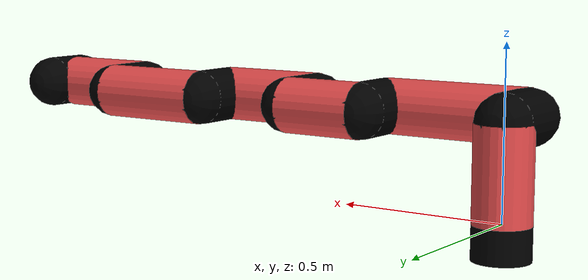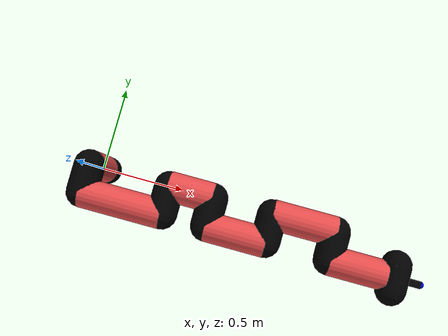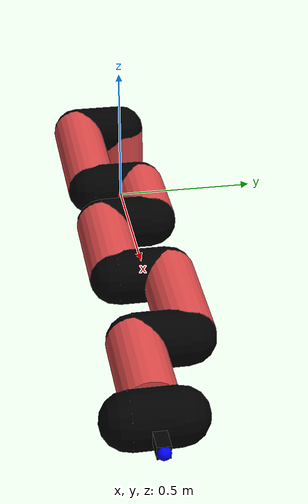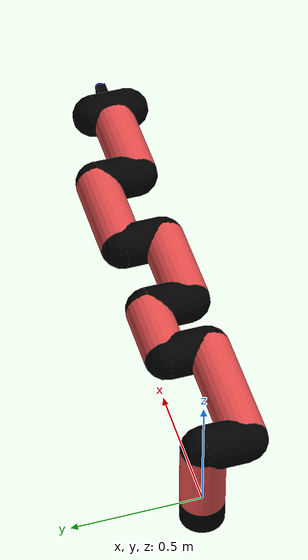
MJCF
<mujoco model="manipulator">
		<compiler angle="degree" coordinate="local" inertiafromgeom="auto" meshdir="meshes/"/>
		<option gravity="0 0 0" integrator="RK4" iterations="30" timestep="0.01"/>

		<default>
		<joint armature="1" limited="true" stiffness="10" damping="15" frictionloss="5.0"/>
		<geom conaffinity="1" condim="3" contype="1" friction=".5 .1 .1" margin="0.002"/>
		<motor ctrllimited="true"/>
		<position ctrllimited="true"/>
		</default>

		<asset>
		<texture builtin="gradient" height="100" rgb1="1.0 1.0 1.0" rgb2="1.0 1.0 1.0" type="skybox" width="100"/>
		<texture builtin="flat" height="32" name="arm_tex" rgb1="0.9 0.3 0.3" type="2d" width="32"/>
		<texture builtin="flat" height="32" name="gripper_tex" rgb1="0.0 0.0 0.0" type="cube" width="32"/>

		<material name="arm_mat" shininess="0.1" specular="0.1" texture="arm_tex"/>
		<material name="gripper_mat" shininess="1" specular="1" texture="gripper_tex"/>
		</asset>

		<worldbody>
		<light cutoff="45" diffuse=".8 .8 .8" dir="0 0.16 -1" directional="false" name="light" pos="0 -2.0 8.0" specular="0.3 0.3 0.3"/>

		<body name="base_link" pos="0 0 -0.1">
		<geom fromto="0 0 0 0 0 0.1" material="arm_mat" name="base_link" rgba="0.0 0.0 0.0 1" size="0.085" type="cylinder"/>
		</body>

		<body name="l1" pos="0 0 0">
<geom fromto="0 0 0 0 0 0.28" material="arm_mat" name="l1" rgba="0.9 0.3 0.3 1" size="0.085" type="cylinder"/>
<geom fromto="0 0 0.28 0 -0.16 0.28" material="arm_mat" name="l1_ex" rgba="0.0 0.0 0.0 1" size="0.085" type="capsule"/>
<joint axis="0 0 1" name="j1" pos="0 0 0" range="-90 90" damping="22.92" frictionloss="7.74"/>

<body name="l2" pos="0 -0.16 0.28">
<geom fromto="0 0 0 0.46 0 0" material="arm_mat" name="l2" rgba="0.9 0.3 0.3 1" size="0.085" type="cylinder"/>
<geom fromto="0.46 0 0 0.46 0.16 0" material="arm_mat" name="l2_ex" rgba="0.0 0.0 0.0 1" size="0.085" type="capsule"/>
<joint axis="0.0 1.0 0.0" name="j2" pos="0 0 0" range="-90 60" damping="25.97" frictionloss="7.6"/>

<body name="l3" pos="0.46 0.16 0">
<geom fromto="0 0 0 0.25 0 0" material="arm_mat" name="l3" rgba="0.9 0.3 0.3 1" size="0.085" type="cylinder"/>
<geom fromto="0.25 0 0 0.25 -0.16 0" material="arm_mat" name="l3_ex" rgba="0.0 0.0 0.0 1" size="0.085" type="capsule"/>
<joint axis="0.0 1.0 0.0" name="j3" pos="0 0 0" range="-30 60" damping="29.63" frictionloss="8.66"/>

<body name="l4" pos="0.25 -0.16 0">
<geom fromto="0 0 0 0.34 0 0" material="arm_mat" name="l4" rgba="0.9 0.3 0.3 1" size="0.085" type="cylinder"/>
<geom fromto="0.34 0 0 0.34 0.16 0" material="arm_mat" name="l4_ex" rgba="0.0 0.0 0.0 1" size="0.085" type="capsule"/>
<joint axis="0.0 1.0 0.0" name="j4" pos="0 0 0" range="-30 60" damping="23.63" frictionloss="10.64"/>

<body name="l5" pos="0.34 0.16 0">
<geom fromto="0 0 0 0.36 0 0" material="arm_mat" name="l5" rgba="0.9 0.3 0.3 1" size="0.085" type="cylinder"/>
<geom fromto="0.36 0 0 0.36 -0.16 0" material="arm_mat" name="l5_ex" rgba="0.0 0.0 0.0 1" size="0.085" type="capsule"/>
<joint axis="0.0 1.0 0.0" name="j5" pos="0 0 0" range="-30 60" damping="37.41" frictionloss="8.43"/>

<body name="l6" pos="0.36 -0.16 0">
<geom fromto="0 0 0 0.32 0 0" material="arm_mat" name="l6" rgba="0.9 0.3 0.3 1" size="0.085" type="cylinder"/>
<joint axis="0.0 1.0 0.0" name="j6" pos="0 0 0" range="-30 60" damping="30.66" frictionloss="12.03"/>

<body name="gripper" pos="0.32 0 0">
<geom fromto="0.05 -0.07 0 0.05 0.07 0" material="gripper_mat" name="gripper" rgba="0.0 0.0 0.0 1" size="0.085" type="capsule"/><joint axis="1 0 0" name="j7" pos="0 0 0" range="-90 90" damping="15" frictionloss="5.0"/><body name="finger" pos="0.1 0 0">
<geom fromto="0 0.0 0 0.1 0.0 0" material="gripper_mat" name="finger" rgba="0.0 0.0 0.0 1" size="0.020 0.06 0.06" type="box"/>
</body>
<site name="current" pos="0.2 0. 0.0" rgba="0. 0. 1.0 1" size="0.02" type="sphere"/>
</body>
</body>
</body>
</body>
</body>
</body>
</body>
</worldbody>
<actuator>
<motor ctrllimited="true" ctrlrange="-1.0 1.0" joint="j1" gear="79.52"/>
<motor ctrllimited="true" ctrlrange="-1.0 1.0" joint="j2" gear="63.08"/>
<motor ctrllimited="true" ctrlrange="-1.0 1.0" joint="j3" gear="78.39"/>
<motor ctrllimited="true" ctrlrange="-1.0 1.0" joint="j4" gear="90.26"/>
<motor ctrllimited="true" ctrlrange="-1.0 1.0" joint="j5" gear="61.74"/>
<motor ctrllimited="true" ctrlrange="-1.0 1.0" joint="j6" gear="83.81"/>
<motor ctrllimited="true" ctrlrange="-1.0 1.0" joint="j7" gear="80"/>
</actuator>
</mujoco>
